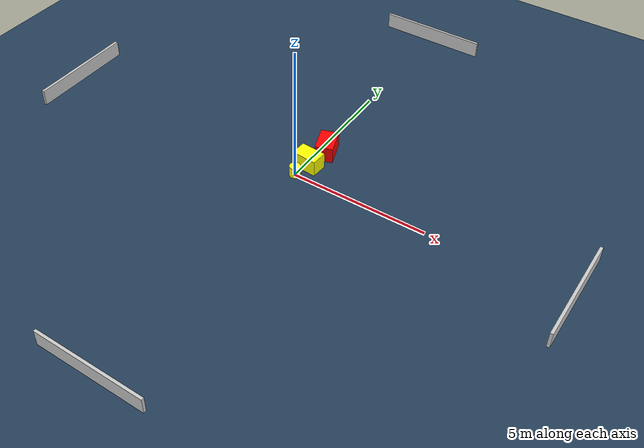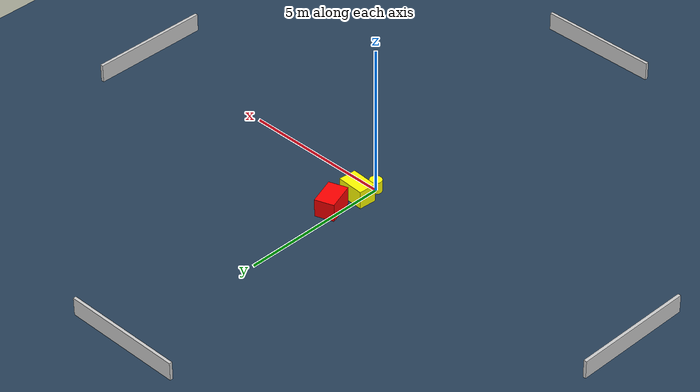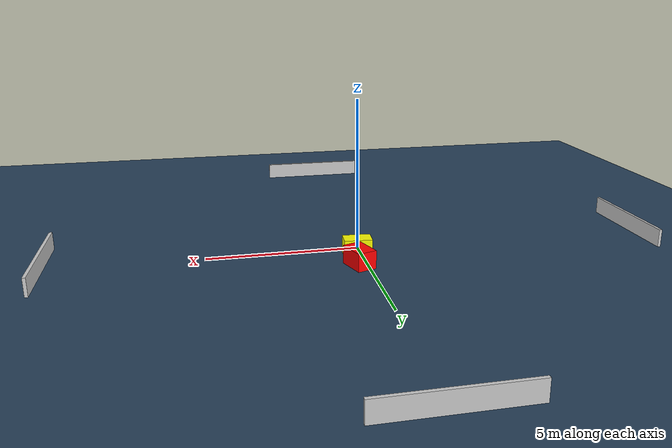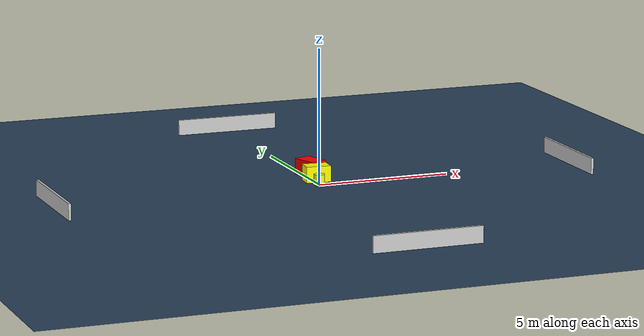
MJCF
<?xml version="1.0" ?>
<mujoco model="generated_environment">
  <option timestep="0.01" integrator="RK4" cone="elliptic"/>
  <default>
    <geom density="1"/>
  </default>
  <asset>
    <texture builtin="gradient" height="3072" name="skybox" rgb1="0.3 0.5 0.7" rgb2="0 0 0" type="skybox" width="512"/>
    <texture builtin="checker" height="300" name="groundplane" rgb1="0.2 0.3 0.4" rgb2="0.1 0.2 0.3" type="2d" width="300"/>
    <material name="groundplane" reflectance="0.2" texrepeat="5 5" texture="groundplane"/>
  </asset>
  <worldbody>
    <light dir="0 0 -1" directional="true" pos="0 0 1.5"/>
    <geom condim="3" friction="0.5 0.005 0.001" material="groundplane" name="floor" pos="0 0 0" size="0 0 0.05" type="plane"/>
    <body name="walls">
      <geom name="wall_1" condim="4" pos="-10.0 0.0 0.3" rgba="0.800000011920929 0.800000011920929 0.800000011920929 1.0" size="0.05 2.0 0.3" type="box"/>
      <geom name="wall_2" condim="4" pos="10.0 0.0 0.3" rgba="0.800000011920929 0.800000011920929 0.800000011920929 1.0" size="0.05 2.0 0.3" type="box"/>
      <geom name="wall_3" condim="4" pos="0.0 -10.0 0.3" rgba="0.800000011920929 0.800000011920929 0.800000011920929 1.0" size="2.0 0.05 0.3" type="box"/>
      <geom name="wall_4" condim="4" pos="0.0 10.0 0.3" rgba="0.800000011920929 0.800000011920929 0.800000011920929 1.0" size="2.0 0.05 0.3" type="box"/>
    </body>
    <body name="robot">
      <joint name="joint_x" type="slide" pos="0 0 0" axis="1 0 0"/>
      <joint name="joint_y" type="slide" pos="0 0 0" axis="0 1 0"/>
      <geom name="robot" type="cylinder" pos="0.0 0.0 0.2" size="0.2 0.2 0.0" mass="5.0" friction="1.0 0.005 0.0001" condim="4" rgba="1.0 1.0 0.0 1.0"/>
    </body>
    <body name="obstacle_1_movable">
      <geom name="obstacle_1_movable" condim="4" pos="0.13608190850679075 0.6342152536163598 0.3" euler="0 0 86.41557704709288" friction="0.0 0.005 0.001" rgba="1.0 1.0 0.0 1.0" size="0.29698756492125666 0.4592665287615408 0.3" type="box" mass="0.1"/>
      <joint type="free"/>
    </body>
    <body name="obstacle_2_static">
      <geom name="obstacle_2_static" condim="4" pos="0.27029401690322546 1.585834933366095 0.3" euler="0 0 109.24122529400081" friction="0.0 0.005 0.001" rgba="1.0 0.0 0.0 1.0" size="0.47948517210170655 0.32066040597882484 0.3" type="box"/>
    </body>
  </worldbody>
  <actuator>
    <motor name="actuator_x" joint="joint_x" gear="1" ctrlrange="-1 1"/>
    <motor name="actuator_y" joint="joint_y" gear="1" ctrlrange="-1 1"/>
  </actuator>
</mujoco>
